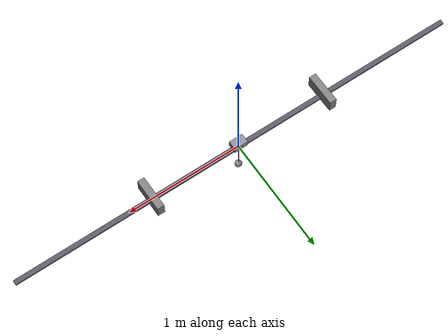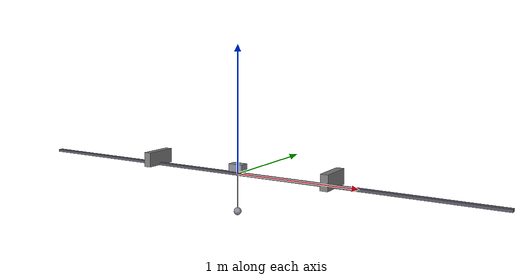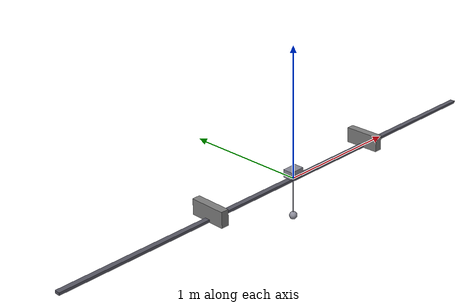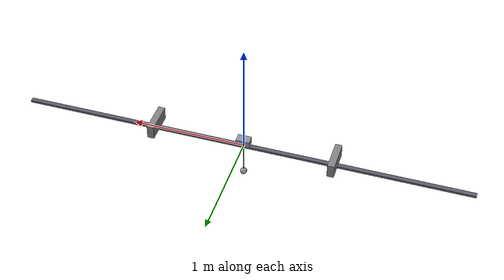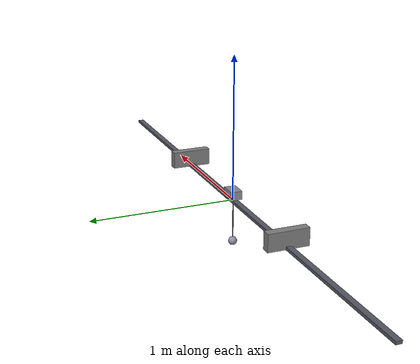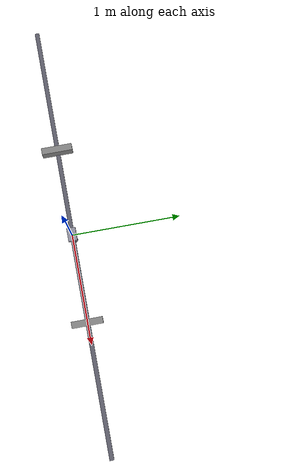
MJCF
<mujoco model="cart_pendulum">
  <compiler angle="radian" autolimits="true"/>
  <option timestep="0.004166666666666667" gravity="0 0 -9.80665" integrator="RK4"/>

  <default>
    <joint damping="0.04" armature="0.001"/>
    <geom rgba="0.55 0.55 0.6 1" friction="0.2 0.05 0.001"/>
  </default>

  <worldbody>
    <light name="main_light" pos="0 -1 1" dir="0 1 -1" diffuse="1 1 1"/>
    <camera name="side" pos="0 -1.2 0.35" xyaxes="1 0 0 0 0 1"/>

    <geom name="rail" type="box" size="2 0.02 0.01" pos="0 0 0" rgba="0.35 0.35 0.4 1" contype="0" conaffinity="0"/>
    <!-- Fixed limit-switch plates (cart_geom collides; touch sensors on sites). -->
    <body name="limit_switch_left" pos="-0.8 0 0.05">
      <geom name="limit_left_plate" type="box" size="0.02 0.12 0.05" rgba="0.85 0.25 0.2 0.9"/>
      <site name="limit_left_site" type="box" size="0.03 0.14 0.06"/>
    </body>
    <body name="limit_switch_right" pos="0.8 0 0.05">
      <geom name="limit_right_plate" type="box" size="0.02 0.12 0.05" rgba="0.85 0.25 0.2 0.9"/>
      <site name="limit_right_site" type="box" size="0.03 0.14 0.06"/>
    </body>

    <body name="cart" pos="0 0 0.05">
      <joint name="cart_slide" type="slide" axis="1 0 0" damping="0.5" limited="false"/>
      <geom name="cart_geom" type="box" size="0.06 0.04 0.03" mass="0.8"/>
      <body name="pendulum" pos="0 0 0">
        <joint name="pendulum_hinge" type="hinge" axis="0 1 0" pos="0 0 0"/>
        <geom name="rod" type="capsule" fromto="0 0 0 0 0 -0.35" size="0.004" mass="0.12"/>
        <geom name="bob" type="sphere" size="0.03" pos="0 0 -0.35" mass="0.12"/>
      </body>
    </body>
  </worldbody>

  <actuator>
    <!-- ctrl = cart position setpoint (m); kp/kv tuned in plant.py from cartVelocityTrackingPerSec -->
    <position name="cart_pos" joint="cart_slide" kp="1200" kv="120"
              ctrllimited="true" ctrlrange="-1.8 1.8"/>
  </actuator>

  <sensor>
    <touch name="limit_left_touch" site="limit_left_site"/>
    <touch name="limit_right_touch" site="limit_right_site"/>
  </sensor>

  <keyframe>
    <key name="upright_0deg" qpos="0 3.14159265359" ctrl="0"/>
  </keyframe>
</mujoco>
